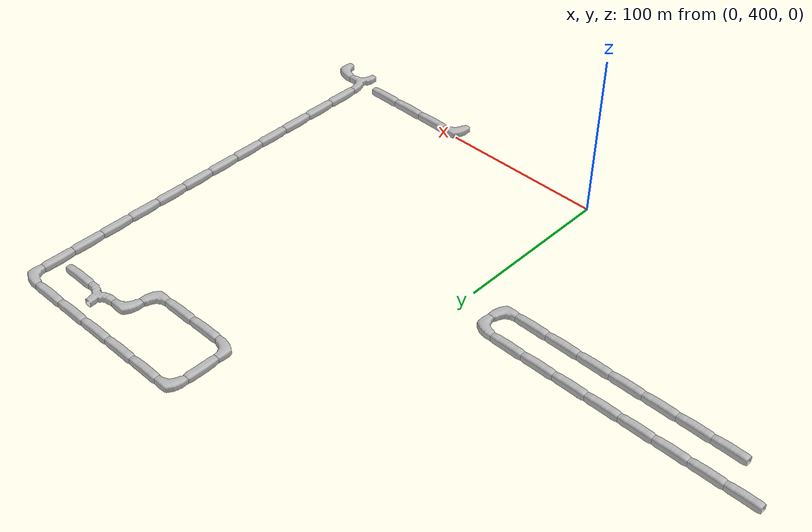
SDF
<sdf version="1.6">
 <world name="cave_16000_8">
  <include>
   <static>true</static>
   <name>cave_-8_25</name>
   <pose>-160 500 0 0 0 1.5707963267948966</pose>
   <uri>model://cave_straight_20m</uri>
  </include>
  <include>
   <static>true</static>
   <name>cave_-7_25</name>
   <pose>-140 500 0 0 0 1.5707963267948966</pose>
   <uri>model://cave_straight_20m</uri>
  </include>
  <include>
   <static>true</static>
   <name>cave_-6_25</name>
   <pose>-120 500 0 0 0 1.5707963267948966</pose>
   <uri>model://cave_straight_20m</uri>
  </include>
  <include>
   <static>true</static>
   <name>cave_-5_25</name>
   <pose>-100 500 0 0 0 1.5707963267948966</pose>
   <uri>model://cave_straight_20m</uri>
  </include>
  <include>
   <static>true</static>
   <name>cave_-4_25</name>
   <pose>-80 500 0 0 0 1.5707963267948966</pose>
   <uri>model://cave_straight_20m</uri>
  </include>
  <include>
   <static>true</static>
   <name>cave_-3_25</name>
   <pose>-60 500 0 0 0 1.5707963267948966</pose>
   <uri>model://cave_straight_20m</uri>
  </include>
  <include>
   <static>true</static>
   <name>cave_-2_25</name>
   <pose>-40 500 0 0 0 1.5707963267948966</pose>
   <uri>model://cave_straight_20m</uri>
  </include>
  <include>
   <static>true</static>
   <name>cave_-1_25</name>
   <pose>-20 500 0 0 0 1.5707963267948966</pose>
   <uri>model://cave_L_20m</uri>
  </include>
  <include>
   <static>true</static>
   <name>cave_-1_26</name>
   <pose>-20 520 0 0 0 3.141592653589793</pose>
   <uri>model://cave_L_20m</uri>
  </include>
  <include>
   <static>true</static>
   <name>cave_-2_26</name>
   <pose>-40 520 0 0 0 1.5707963267948966</pose>
   <uri>model://cave_straight_20m</uri>
  </include>
  <include>
   <static>true</static>
   <name>cave_-3_26</name>
   <pose>-60 520 0 0 0 1.5707963267948966</pose>
   <uri>model://cave_straight_20m</uri>
  </include>
  <include>
   <static>true</static>
   <name>cave_-4_26</name>
   <pose>-80 520 0 0 0 1.5707963267948966</pose>
   <uri>model://cave_straight_20m</uri>
  </include>
  <include>
   <static>true</static>
   <name>cave_-5_26</name>
   <pose>-100 520 0 0 0 1.5707963267948966</pose>
   <uri>model://cave_straight_20m</uri>
  </include>
  <include>
   <static>true</static>
   <name>cave_-6_26</name>
   <pose>-120 520 0 0 0 1.5707963267948966</pose>
   <uri>model://cave_straight_20m</uri>
  </include>
  <include>
   <static>true</static>
   <name>cave_-7_26</name>
   <pose>-140 520 0 0 0 1.5707963267948966</pose>
   <uri>model://cave_straight_20m</uri>
  </include>
  <include>
   <static>true</static>
   <name>cave_-8_26</name>
   <pose>-160 520 0 0 0 1.5707963267948966</pose>
   <uri>model://cave_straight_20m</uri>
  </include>
  <include>
   <static>true</static>
   <name>cave_-9_26</name>
   <pose>-180 520 0 0 0 1.5707963267948966</pose>
   <uri>model://cave_straight_20m</uri>
  </include>
  <include>
   <static>true</static>
   <name>cave_10_20</name>
   <pose>200 400 0 0 0 3.141592653589793</pose>
   <uri>model://cave_L_20m</uri>
  </include>
  <include>
   <static>true</static>
   <name>cave_9_20</name>
   <pose>180 400 0 0 0 -1.5707963267948966</pose>
   <uri>model://cave_3way_20m</uri>
  </include>
  <include>
   <static>true</static>
   <name>cave_5_20</name>
   <pose>100 400 0 0 0 -1.5707963267948966</pose>
   <uri>model://cave_L_20m</uri>
  </include>
  <include>
   <static>true</static>
   <name>cave_6_20</name>
   <pose>120 400 0 0 0 1.5707963267948966</pose>
   <uri>model://cave_straight_20m</uri>
  </include>
  <include>
   <static>true</static>
   <name>cave_7_20</name>
   <pose>140 400 0 0 0 1.5707963267948966</pose>
   <uri>model://cave_straight_20m</uri>
  </include>
  <include>
   <static>true</static>
   <name>cave_8_20</name>
   <pose>160 400 0 0 0 1.5707963267948966</pose>
   <uri>model://cave_straight_20m</uri>
  </include>
  <include>
   <static>true</static>
   <name>cave_9_21</name>
   <pose>180 420 0 0 0 0.0</pose>
   <uri>model://cave_straight_20m</uri>
  </include>
  <include>
   <static>true</static>
   <name>cave_9_22</name>
   <pose>180 440 0 0 0 0.0</pose>
   <uri>model://cave_straight_20m</uri>
  </include>
  <include>
   <static>true</static>
   <name>cave_9_23</name>
   <pose>180 460 0 0 0 0.0</pose>
   <uri>model://cave_straight_20m</uri>
  </include>
  <include>
   <static>true</static>
   <name>cave_9_24</name>
   <pose>180 480 0 0 0 0.0</pose>
   <uri>model://cave_straight_20m</uri>
  </include>
  <include>
   <static>true</static>
   <name>cave_9_25</name>
   <pose>180 500 0 0 0 0.0</pose>
   <uri>model://cave_straight_20m</uri>
  </include>
  <include>
   <static>true</static>
   <name>cave_9_26</name>
   <pose>180 520 0 0 0 0.0</pose>
   <uri>model://cave_straight_20m</uri>
  </include>
  <include>
   <static>true</static>
   <name>cave_9_27</name>
   <pose>180 540 0 0 0 0.0</pose>
   <uri>model://cave_straight_20m</uri>
  </include>
  <include>
   <static>true</static>
   <name>cave_9_28</name>
   <pose>180 560 0 0 0 0.0</pose>
   <uri>model://cave_straight_20m</uri>
  </include>
  <include>
   <static>true</static>
   <name>cave_9_29</name>
   <pose>180 580 0 0 0 0.0</pose>
   <uri>model://cave_straight_20m</uri>
  </include>
  <include>
   <static>true</static>
   <name>cave_9_30</name>
   <pose>180 600 0 0 0 0.0</pose>
   <uri>model://cave_straight_20m</uri>
  </include>
  <include>
   <static>true</static>
   <name>cave_9_31</name>
   <pose>180 620 0 0 0 0.0</pose>
   <uri>model://cave_straight_20m</uri>
  </include>
  <include>
   <static>true</static>
   <name>cave_9_32</name>
   <pose>180 640 0 0 0 0.0</pose>
   <uri>model://cave_straight_20m</uri>
  </include>
  <include>
   <static>true</static>
   <name>cave_9_33</name>
   <pose>180 660 0 0 0 3.141592653589793</pose>
   <uri>model://cave_L_20m</uri>
  </include>
  <include>
   <static>true</static>
   <name>cave_8_33</name>
   <pose>160 660 0 0 0 1.5707963267948966</pose>
   <uri>model://cave_straight_20m</uri>
  </include>
  <include>
   <static>true</static>
   <name>cave_7_33</name>
   <pose>140 660 0 0 0 1.5707963267948966</pose>
   <uri>model://cave_straight_20m</uri>
  </include>
  <include>
   <static>true</static>
   <name>cave_6_33</name>
   <pose>120 660 0 0 0 1.5707963267948966</pose>
   <uri>model://cave_straight_20m</uri>
  </include>
  <include>
   <static>true</static>
   <name>cave_5_33</name>
   <pose>100 660 0 0 0 1.5707963267948966</pose>
   <uri>model://cave_straight_20m</uri>
  </include>
  <include>
   <static>true</static>
   <name>cave_4_33</name>
   <pose>80 660 0 0 0 1.5707963267948966</pose>
   <uri>model://cave_straight_20m</uri>
  </include>
  <include>
   <static>true</static>
   <name>cave_3_33</name>
   <pose>60 660 0 0 0 -1.5707963267948966</pose>
   <uri>model://cave_L_20m</uri>
  </include>
  <include>
   <static>true</static>
   <name>cave_3_32</name>
   <pose>60 640 0 0 0 0.0</pose>
   <uri>model://cave_straight_20m</uri>
  </include>
  <include>
   <static>true</static>
   <name>cave_3_31</name>
   <pose>60 620 0 0 0 0.0</pose>
   <uri>model://cave_L_20m</uri>
  </include>
  <include>
   <static>true</static>
   <name>cave_4_31</name>
   <pose>80 620 0 0 0 1.5707963267948966</pose>
   <uri>model://cave_straight_20m</uri>
  </include>
  <include>
   <static>true</static>
   <name>cave_5_31</name>
   <pose>100 620 0 0 0 1.5707963267948966</pose>
   <uri>model://cave_straight_20m</uri>
  </include>
  <include>
   <static>true</static>
   <name>cave_6_31</name>
   <pose>120 620 0 0 0 1.5707963267948966</pose>
   <uri>model://cave_L_20m</uri>
  </include>
  <include>
   <static>true</static>
   <name>cave_6_32</name>
   <pose>120 640 0 0 0 -1.5707963267948966</pose>
   <uri>model://cave_L_20m</uri>
  </include>
  <include>
   <static>true</static>
   <name>cave_7_32</name>
   <pose>140 640 0 0 0 0.0</pose>
   <uri>model://cave_3way_20m</uri>
  </include>
  <include>
   <static>true</static>
   <name>cave_8_32</name>
   <pose>160 640 0 0 0 1.5707963267948966</pose>
   <uri>model://cave_straight_20m</uri>
  </include>
 </world>
</sdf>
